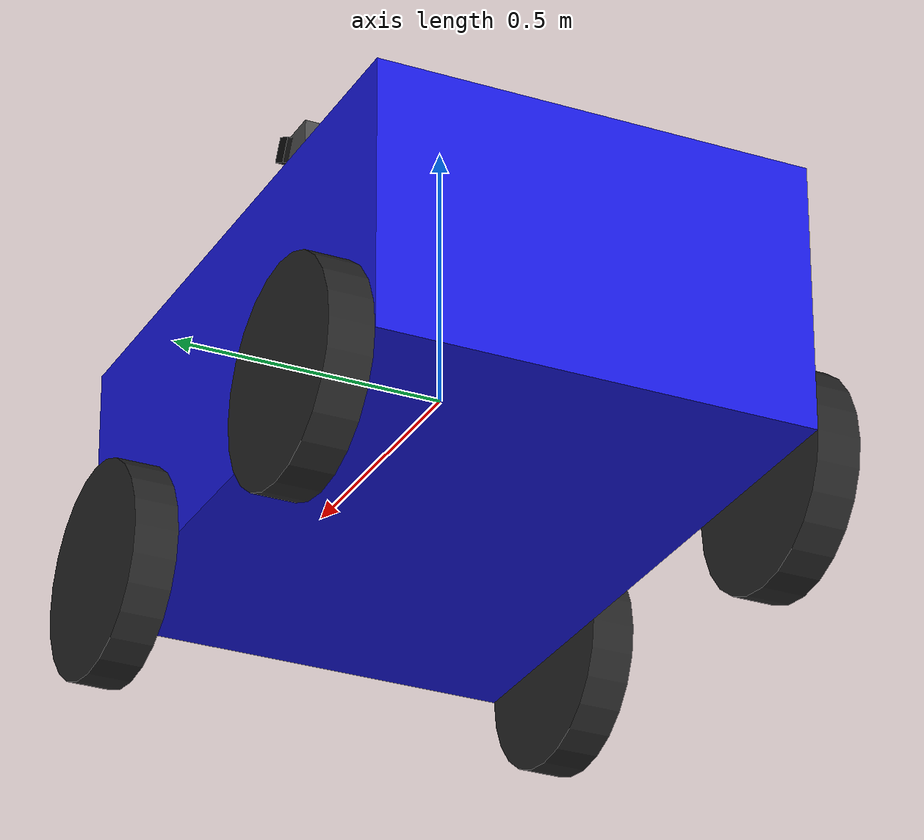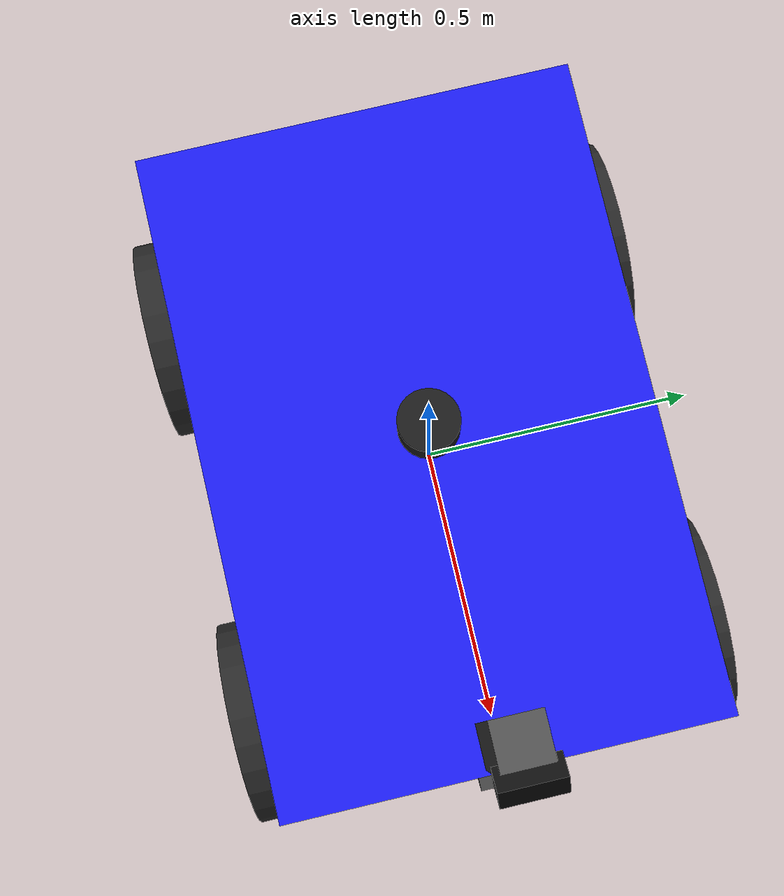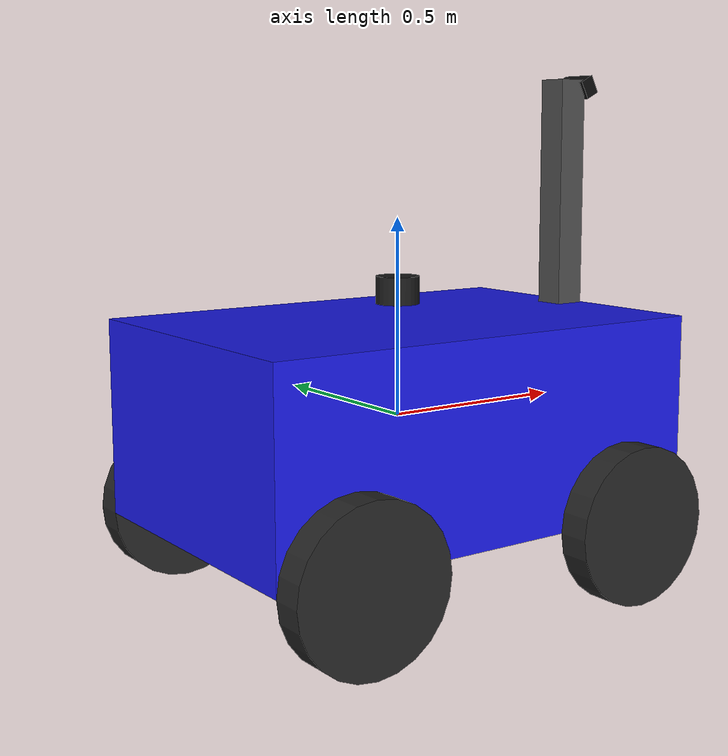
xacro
<?xml version="1.0"?>
<robot xmlns:xacro="http://www.ros.org/wiki/xacro" name="trash_robot">

  <!-- ===== ТЕЛО (SDF body: 1.2×0.8×0.5м, масса 50кг) ===== -->
  <link name="base_link">
    <visual>
      <geometry><box size="1.2 0.8 0.5"/></geometry>
      <material name="blue"><color rgba="0.1 0.1 0.9 1.0"/></material>
    </visual>
    <collision>
      <geometry><box size="1.2 0.8 0.5"/></geometry>
    </collision>
    <inertial>
      <mass value="50"/>
      <inertia ixx="3.708333" ixy="0" ixz="0"
               iyy="7.041667" iyz="0"
               izz="8.666667"/>
    </inertial>
  </link>

  <!-- ===== КОЛЁСА (SDF: radius=0.2, length=0.08) ===== -->
  <!-- SDF pose relative_to body: (±0.40, ±0.44, -0.25), rpy=(-pi/2, 0, 0) -->

  <xacro:macro name="wheel" params="name xyz_str">
    <link name="${name}">
      <visual>
        <origin rpy="1.5707963 0 0"/>
        <geometry><cylinder radius="0.2" length="0.08"/></geometry>
        <material name="darkgray"><color rgba="0.15 0.15 0.15 1"/></material>
      </visual>
      <collision>
        <origin rpy="1.5707963 0 0"/>
        <geometry><cylinder radius="0.2" length="0.08"/></geometry>
      </collision>
      <inertial>
        <mass value="3"/>
        <inertia ixx="0.0316" ixy="0" ixz="0"
                 iyy="0.0316" iyz="0"
                 izz="0.06"/>
      </inertial>
    </link>
    <joint name="${name}_joint" type="continuous">
      <parent link="base_link"/>
      <child  link="${name}"/>
      <origin xyz="${xyz_str}" rpy="0 0 0"/>
      <axis xyz="0 1 0"/>
    </joint>
  </xacro:macro>

  <xacro:wheel name="front_left_wheel"  xyz_str=" 0.40  0.44 -0.25"/>
  <xacro:wheel name="front_right_wheel" xyz_str=" 0.40 -0.44 -0.25"/>
  <xacro:wheel name="back_left_wheel"   xyz_str="-0.40  0.44 -0.25"/>
  <xacro:wheel name="back_right_wheel"  xyz_str="-0.40 -0.44 -0.25"/>

  <!-- ===== СТОЙКА КАМЕРЫ (SDF desk_for_depth: 0.08×0.08×0.7м) ===== -->
  <!-- pose relative_to body: (0.55, 0, 0.5) -->
  <link name="desk_for_depth">
    <visual>
      <geometry><box size="0.08 0.08 0.7"/></geometry>
      <material name="gray"><color rgba="0.3 0.3 0.3 1"/></material>
    </visual>
    <inertial>
      <mass value="2.5"/>
      <inertia ixx="0.1034" ixy="0" ixz="0"
               iyy="0.1034" iyz="0"
               izz="0.00267"/>
    </inertial>
  </link>
  <joint name="desk_for_depth_joint" type="fixed">
    <parent link="base_link"/>
    <child  link="desk_for_depth"/>
    <origin xyz="0.55 0 0.5" rpy="0 0 0"/>
  </joint>

  <!-- ===== RGBD-КАМЕРА (SDF: pose relative_to desk_for_depth) ===== -->
  <!-- SDF: (0.05, 0, 0.33, 0, 0.872665, 0) — наклон вниз 50° -->
  <link name="RGBD_camera">
    <visual>
      <geometry><box size="0.05 0.1 0.04"/></geometry>
      <material name="black"><color rgba="0.05 0.05 0.05 1"/></material>
    </visual>
    <inertial>
      <mass value="0.145"/>
      <inertia ixx="0.0000604" ixy="0" ixz="0"
               iyy="0.0000604" iyz="0"
               izz="0.0000604"/>
    </inertial>
  </link>
  <joint name="RGBD_camera_joint" type="fixed">
    <parent link="desk_for_depth"/>
    <child  link="RGBD_camera"/>
    <!-- SDF pitch=0.872665 (наклон носом вниз) → в URDF rpy=(0, 0.872665, 0) -->
    <origin xyz="0.05 0 0.33" rpy="0 1.1 0"/>
  </joint>

  <!-- ===== НАВИГАЦИОННАЯ КАМЕРА (SDF: pose relative_to body) ===== -->
  <!-- SDF: (0.6, 0, 0, 0, 0.0872665, 0) — небольшой наклон вниз 5° -->
  <link name="nav_camera">
    <visual>
      <geometry><box size="0.05 0.1 0.04"/></geometry>
      <material name="midgray"><color rgba="0.3 0.3 0.3 1"/></material>
    </visual>
    <inertial>
      <mass value="0.145"/>
      <inertia ixx="0.0000604" ixy="0" ixz="0"
               iyy="0.0000604" iyz="0"
               izz="0.0000604"/>
    </inertial>
  </link>
  <joint name="nav_camera_joint" type="fixed">
    <parent link="base_link"/>
    <child  link="nav_camera"/>
    <origin xyz="0.6 0 0" rpy="0 0.45 0"/>
  </joint>

  <!-- ===== ЛИДАР (SDF: pose relative_to body: 0 0 0.32) ===== -->
  <link name="lidar_link">
    <visual>
      <geometry><cylinder radius="0.055" length="0.07"/></geometry>
      <material name="lidar_black"><color rgba="0.1 0.1 0.1 1"/></material>
    </visual>
    <inertial>
      <mass value="0.2"/>
      <inertia ixx="0.0002" ixy="0" ixz="0"
               iyy="0.0002" iyz="0"
               izz="0.0003"/>
    </inertial>
  </link>
  <joint name="lidar_joint" type="fixed">
    <parent link="base_link"/>
    <child  link="lidar_link"/>
    <origin xyz="0 0 0.32" rpy="0 0 0"/>
  </joint>

</robot>
